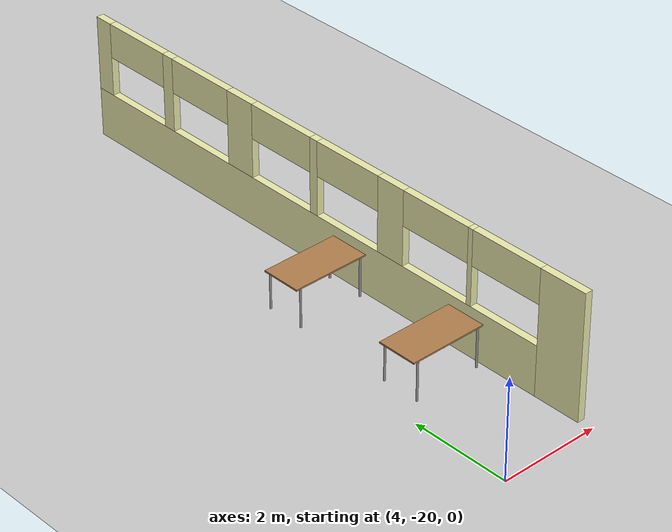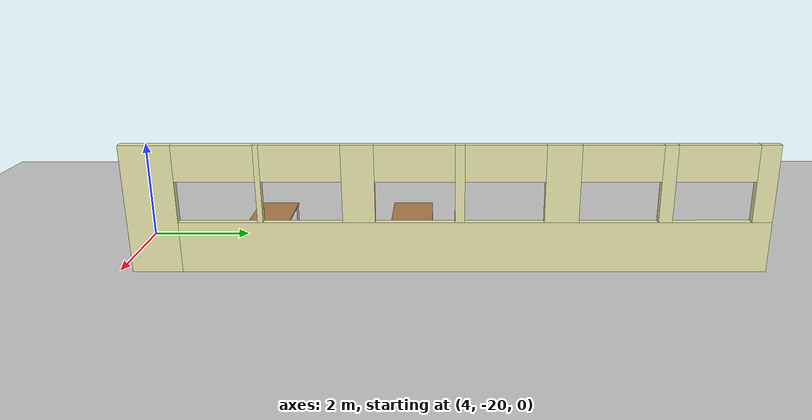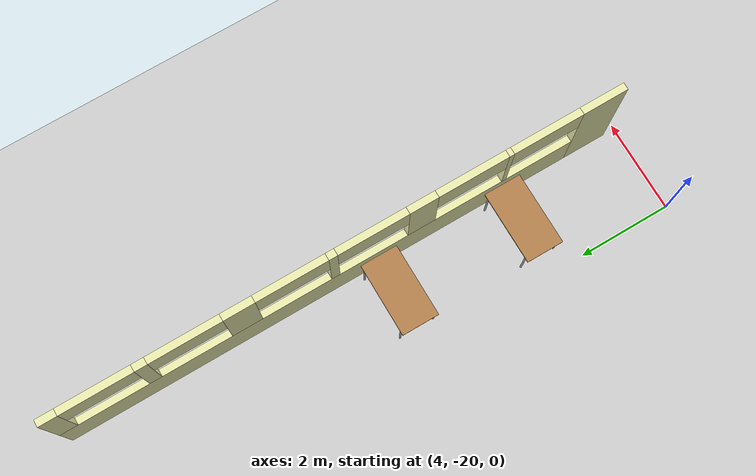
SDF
<sdf version="1.6">
 <world name="default">
  <model name="ground_plane">
   <static>1</static>
   <link name="link">
    <collision name="collision">
     <geometry><plane><normal>0 0 1</normal><size>100 100</size></plane></geometry>
     <surface><friction><ode><mu>100</mu><mu2>50</mu2></ode></friction></surface>
    </collision>
    <visual name="visual">
     <cast_shadows>0</cast_shadows>
     <geometry><plane><normal>0 0 1</normal><size>100 100</size></plane></geometry>
     <material>
      <script><uri>file://media/materials/scripts/gazebo.material</uri><name>Gazebo/Grey</name></script>
     </material>
    </visual>
   </link>
  </model>
  <model name="Building">
   <link name="Wall_2">
    <pose>6 -13.6636 0 0 -0 1.5708</pose>
    <visual name="Wall_2_Visual_0">
     <pose>-5.5945 0 1.25 0 -0 0</pose>
     <geometry><box><size>0.961004 0.15 2.5</size></box></geometry>
     <material>
      <script><uri>file://media/materials/scripts/gazebo.material</uri><name>Gazebo/Grey</name></script>
      <ambient>0.92 0.92 0.68 1</ambient>
     </material>
     <meta><layer>0</layer></meta>
    </visual>
    <collision name="Wall_2_Collision_0">
     <geometry><box><size>0.961004 0.15 2.5</size></box></geometry>
     <pose>-5.5945 0 1.25 0 -0 0</pose>
    </collision>
    <visual name="Wall_2_Visual_1">
     <pose>0.480502 0 0.5 0 -0 0</pose>
     <geometry><box><size>11.189 0.15 1</size></box></geometry>
     <material>
      <script><uri>file://media/materials/scripts/gazebo.material</uri><name>Gazebo/Grey</name></script>
      <ambient>0.92 0.92 0.68 1</ambient>
     </material>
     <meta><layer>0</layer></meta>
    </visual>
    <collision name="Wall_2_Collision_1">
     <geometry><box><size>11.189 0.15 1</size></box></geometry>
     <pose>0.480502 0 0.5 0 -0 0</pose>
    </collision>
    <visual name="Wall_2_Visual_2">
     <pose>-3.56236 0 1.75 0 -0 0</pose>
     <geometry><box><size>0.103271 0.15 1.5</size></box></geometry>
     <material>
      <script><uri>file://media/materials/scripts/gazebo.material</uri><name>Gazebo/Grey</name></script>
      <ambient>0.92 0.92 0.68 1</ambient>
     </material>
     <meta><layer>0</layer></meta>
    </visual>
    <collision name="Wall_2_Collision_2">
     <geometry><box><size>0.103271 0.15 1.5</size></box></geometry>
     <pose>-3.56236 0 1.75 0 -0 0</pose>
    </collision>
    <visual name="Wall_2_Visual_3">
     <pose>-1.70491 0 1.75 0 -0 0</pose>
     <geometry><box><size>0.611626 0.15 1.5</size></box></geometry>
     <material>
      <script><uri>file://media/materials/scripts/gazebo.material</uri><name>Gazebo/Grey</name></script>
      <ambient>0.92 0.92 0.68 1</ambient>
     </material>
     <meta><layer>0</layer></meta>
    </visual>
    <collision name="Wall_2_Collision_3">
     <geometry><box><size>0.611626 0.15 1.5</size></box></geometry>
     <pose>-1.70491 0 1.75 0 -0 0</pose>
    </collision>
    <visual name="Wall_2_Visual_4">
     <pose>0.191642 0 1.75 0 -0 0</pose>
     <geometry><box><size>0.18148 0.15 1.5</size></box></geometry>
     <material>
      <script><uri>file://media/materials/scripts/gazebo.material</uri><name>Gazebo/Grey</name></script>
      <ambient>0.92 0.92 0.68 1</ambient>
     </material>
     <meta><layer>0</layer></meta>
    </visual>
    <collision name="Wall_2_Collision_4">
     <geometry><box><size>0.18148 0.15 1.5</size></box></geometry>
     <pose>0.191642 0 1.75 0 -0 0</pose>
    </collision>
    <visual name="Wall_2_Visual_5">
     <pose>2.10775 0 1.75 0 -0 0</pose>
     <geometry><box><size>0.65073 0.15 1.5</size></box></geometry>
     <material>
      <script><uri>file://media/materials/scripts/gazebo.material</uri><name>Gazebo/Grey</name></script>
      <ambient>0.92 0.92 0.68 1</ambient>
     </material>
     <meta><layer>0</layer></meta>
    </visual>
    <collision name="Wall_2_Collision_5">
     <geometry><box><size>0.65073 0.15 1.5</size></box></geometry>
     <pose>2.10775 0 1.75 0 -0 0</pose>
    </collision>
    <visual name="Wall_2_Visual_6">
     <pose>4.06295 0 1.75 0 -0 0</pose>
     <geometry><box><size>0.259688 0.15 1.5</size></box></geometry>
     <material>
      <script><uri>file://media/materials/scripts/gazebo.material</uri><name>Gazebo/Grey</name></script>
      <ambient>0.92 0.92 0.68 1</ambient>
     </material>
     <meta><layer>0</layer></meta>
    </visual>
    <collision name="Wall_2_Collision_6">
     <geometry><box><size>0.259688 0.15 1.5</size></box></geometry>
     <pose>4.06295 0 1.75 0 -0 0</pose>
    </collision>
    <visual name="Wall_2_Visual_7">
     <pose>5.8839 0 1.75 0 -0 0</pose>
     <geometry><box><size>0.382201 0.15 1.5</size></box></geometry>
     <material>
      <script><uri>file://media/materials/scripts/gazebo.material</uri><name>Gazebo/Grey</name></script>
      <ambient>0.92 0.92 0.68 1</ambient>
     </material>
     <meta><layer>0</layer></meta>
    </visual>
    <collision name="Wall_2_Collision_7">
     <geometry><box><size>0.382201 0.15 1.5</size></box></geometry>
     <pose>5.8839 0 1.75 0 -0 0</pose>
    </collision>
    <visual name="Wall_2_Visual_8">
     <pose>-4.364 0 2.15 0 -0 0</pose>
     <geometry><box><size>1.5 0.15 0.7</size></box></geometry>
     <material>
      <script><uri>file://media/materials/scripts/gazebo.material</uri><name>Gazebo/Grey</name></script>
      <ambient>0.92 0.92 0.68 1</ambient>
     </material>
     <meta><layer>0</layer></meta>
    </visual>
    <collision name="Wall_2_Collision_8">
     <geometry><box><size>1.5 0.15 0.7</size></box></geometry>
     <pose>-4.364 0 2.15 0 -0 0</pose>
    </collision>
    <visual name="Wall_2_Visual_9">
     <pose>-2.76072 0 2.15 0 -0 0</pose>
     <geometry><box><size>1.5 0.15 0.7</size></box></geometry>
     <material>
      <script><uri>file://media/materials/scripts/gazebo.material</uri><name>Gazebo/Grey</name></script>
      <ambient>0.92 0.92 0.68 1</ambient>
     </material>
     <meta><layer>0</layer></meta>
    </visual>
    <collision name="Wall_2_Collision_9">
     <geometry><box><size>1.5 0.15 0.7</size></box></geometry>
     <pose>-2.76072 0 2.15 0 -0 0</pose>
    </collision>
    <visual name="Wall_2_Visual_10">
     <pose>-0.649098 0 2.15 0 -0 0</pose>
     <geometry><box><size>1.5 0.15 0.7</size></box></geometry>
     <material>
      <script><uri>file://media/materials/scripts/gazebo.material</uri><name>Gazebo/Grey</name></script>
      <ambient>0.92 0.92 0.68 1</ambient>
     </material>
     <meta><layer>0</layer></meta>
    </visual>
    <collision name="Wall_2_Collision_10">
     <geometry><box><size>1.5 0.15 0.7</size></box></geometry>
     <pose>-0.649098 0 2.15 0 -0 0</pose>
    </collision>
    <visual name="Wall_2_Visual_11">
     <pose>1.03238 0 2.15 0 -0 0</pose>
     <geometry><box><size>1.5 0.15 0.7</size></box></geometry>
     <material>
      <script><uri>file://media/materials/scripts/gazebo.material</uri><name>Gazebo/Grey</name></script>
      <ambient>0.92 0.92 0.68 1</ambient>
     </material>
     <meta><layer>0</layer></meta>
    </visual>
    <collision name="Wall_2_Collision_11">
     <geometry><box><size>1.5 0.15 0.7</size></box></geometry>
     <pose>1.03238 0 2.15 0 -0 0</pose>
    </collision>
    <visual name="Wall_2_Visual_12">
     <pose>3.18311 0 2.15 0 -0 0</pose>
     <geometry><box><size>1.5 0.15 0.7</size></box></geometry>
     <material>
      <script><uri>file://media/materials/scripts/gazebo.material</uri><name>Gazebo/Grey</name></script>
      <ambient>0.92 0.92 0.68 1</ambient>
     </material>
     <meta><layer>0</layer></meta>
    </visual>
    <collision name="Wall_2_Collision_12">
     <geometry><box><size>1.5 0.15 0.7</size></box></geometry>
     <pose>3.18311 0 2.15 0 -0 0</pose>
    </collision>
    <visual name="Wall_2_Visual_13">
     <pose>4.9428 0 2.15 0 -0 0</pose>
     <geometry><box><size>1.5 0.15 0.7</size></box></geometry>
     <material>
      <script><uri>file://media/materials/scripts/gazebo.material</uri><name>Gazebo/Grey</name></script>
      <ambient>0.92 0.92 0.68 1</ambient>
     </material>
     <meta><layer>0</layer></meta>
    </visual>
    <collision name="Wall_2_Collision_13">
     <geometry><box><size>1.5 0.15 0.7</size></box></geometry>
     <pose>4.9428 0 2.15 0 -0 0</pose>
    </collision>
   </link>
   <static>1</static>
  </model>
  <model name="tablealt_0_clone_51">
   <link name="link">
    <inertial>
     <mass>1</mass>
     <inertia><ixx>1</ixx><ixy>0</ixy><ixz>0</ixz><iyy>1</iyy><iyz>0</iyz><izz>1</izz></inertia>
    </inertial>
    <visual name="back_right_leg">
     <pose>-0.68 -0.38 0.4 0 -0 0</pose>
     <geometry><cylinder><radius>0.02</radius><length>0.8</length></cylinder></geometry>
     <material>
      <script><uri>file://media/materials/scripts/gazebo.material</uri><name>Gazebo/Grey</name></script>
      <shader type="pixel"><normal_map>__default__</normal_map></shader>
      <ambient>0.3 0.3 0.3 1</ambient>
      <diffuse>0.7 0.7 0.7 1</diffuse>
      <specular>0.01 0.01 0.01 1</specular>
      <emissive>0 0 0 1</emissive>
     </material>
    </visual>
    <visual name="back_left_leg">
     <pose>-0.68 0.38 0.4 0 -0 0</pose>
     <geometry><cylinder><radius>0.02</radius><length>0.8</length></cylinder></geometry>
     <material>
      <script><uri>file://media/materials/scripts/gazebo.material</uri><name>Gazebo/Grey</name></script>
      <shader type="pixel"><normal_map>__default__</normal_map></shader>
      <ambient>0.3 0.3 0.3 1</ambient>
      <diffuse>0.7 0.7 0.7 1</diffuse>
      <specular>0.01 0.01 0.01 1</specular>
      <emissive>0 0 0 1</emissive>
     </material>
    </visual>
    <visual name="visual1">
     <pose>0 0 0.8 0 -0 0</pose>
     <geometry><box><size>1.57 0.8 0.03</size></box></geometry>
     <material>
      <script><uri>file://media/materials/scripts/gazebo.material</uri><name>Gazebo/Wood</name></script>
      <shader type="pixel"><normal_map>__default__</normal_map></shader>
      <ambient>0.92 0.92 0.68 1</ambient>
      <diffuse>1 1 1 1</diffuse>
      <specular>0.2 0.2 0.2 1</specular>
      <emissive>0 0 0 1</emissive>
     </material>
    </visual>
    <visual name="front_left_leg">
     <pose>0.68 0.38 0.4 0 -0 0</pose>
     <geometry><cylinder><radius>0.02</radius><length>0.8</length></cylinder></geometry>
     <material>
      <script><uri>file://media/materials/scripts/gazebo.material</uri><name>Gazebo/Grey</name></script>
      <shader type="pixel"><normal_map>__default__</normal_map></shader>
      <ambient>0.3 0.3 0.3 1</ambient>
      <diffuse>0.7 0.7 0.7 1</diffuse>
      <specular>0.01 0.01 0.01 1</specular>
      <emissive>0 0 0 1</emissive>
     </material>
    </visual>
    <visual name="front_right_leg">
     <pose>0.68 -0.38 0.4 0 -0 0</pose>
     <geometry><cylinder><radius>0.02</radius><length>0.8</length></cylinder></geometry>
     <material>
      <script><uri>file://media/materials/scripts/gazebo.material</uri><name>Gazebo/Grey</name></script>
      <shader type="pixel"><normal_map>__default__</normal_map></shader>
      <ambient>0.3 0.3 0.3 1</ambient>
      <diffuse>0.7 0.7 0.7 1</diffuse>
      <specular>0.01 0.01 0.01 1</specular>
      <emissive>0 0 0 1</emissive>
     </material>
    </visual>
    <collision name="front_right_leg">
     <pose>0.68 -0.38 0.4 0 -0 0</pose>
     <geometry><cylinder><radius>0.02</radius><length>0.8</length></cylinder></geometry>
     <surface>
      <friction>
       <ode><mu>1</mu><mu2>1</mu2><fdir1>0 0 0</fdir1><slip1>0</slip1><slip2>0</slip2></ode>
       <torsional>
        <coefficient>1</coefficient>
        <patch_radius>0</patch_radius>
        <surface_radius>0</surface_radius>
        <use_patch_radius>1</use_patch_radius>
        <ode><slip>0</slip></ode>
       </torsional>
      </friction>
      <bounce><restitution_coefficient>0</restitution_coefficient><threshold>1e+06</threshold></bounce>
      <contact>
       <collide_without_contact>0</collide_without_contact>
       <collide_without_contact_bitmask>1</collide_without_contact_bitmask>
       <collide_bitmask>1</collide_bitmask>
       <ode>
        <soft_cfm>0</soft_cfm>
        <soft_erp>0.2</soft_erp>
        <kp>1e+13</kp>
        <kd>1</kd>
        <max_vel>0.01</max_vel>
        <min_depth>0</min_depth>
       </ode>
       <bullet>
        <split_impulse>1</split_impulse>
        <split_impulse_penetration_threshold>-0.01</split_impulse_penetration_threshold>
        <soft_cfm>0</soft_cfm>
        <soft_erp>0.2</soft_erp>
        <kp>1e+13</kp>
        <kd>1</kd>
       </bullet>
      </contact>
     </surface>
    </collision>
    <collision name="surface">
     <pose>0 0 0.8 0 -0 0</pose>
     <geometry><box><size>1.5 0.8 0.03</size></box></geometry>
     <surface>
      <friction>
       <ode><mu>0.6</mu><mu2>0.6</mu2><fdir1>0 0 0</fdir1><slip1>0</slip1><slip2>0</slip2></ode>
       <torsional>
        <coefficient>1</coefficient>
        <patch_radius>0</patch_radius>
        <surface_radius>0</surface_radius>
        <use_patch_radius>1</use_patch_radius>
        <ode><slip>0</slip></ode>
       </torsional>
      </friction>
      <bounce><restitution_coefficient>0</restitution_coefficient><threshold>1e+06</threshold></bounce>
      <contact>
       <collide_without_contact>0</collide_without_contact>
       <collide_without_contact_bitmask>1</collide_without_contact_bitmask>
       <collide_bitmask>1</collide_bitmask>
       <ode>
        <soft_cfm>0</soft_cfm>
        <soft_erp>0.2</soft_erp>
        <kp>1e+13</kp>
        <kd>1</kd>
        <max_vel>0.01</max_vel>
        <min_depth>0</min_depth>
       </ode>
       <bullet>
        <split_impulse>1</split_impulse>
        <split_impulse_penetration_threshold>-0.01</split_impulse_penetration_threshold>
        <soft_cfm>0</soft_cfm>
        <soft_erp>0.2</soft_erp>
        <kp>1e+13</kp>
        <kd>1</kd>
       </bullet>
      </contact>
     </surface>
    </collision>
    <collision name="front_left_leg">
     <pose>0.68 0.38 0.4 0 -0 0</pose>
     <geometry><cylinder><radius>0.02</radius><length>0.8</length></cylinder></geometry>
     <surface>
      <friction>
       <ode><mu>1</mu><mu2>1</mu2><fdir1>0 0 0</fdir1><slip1>0</slip1><slip2>0</slip2></ode>
       <torsional>
        <coefficient>1</coefficient>
        <patch_radius>0</patch_radius>
        <surface_radius>0</surface_radius>
        <use_patch_radius>1</use_patch_radius>
        <ode><slip>0</slip></ode>
       </torsional>
      </friction>
      <bounce><restitution_coefficient>0</restitution_coefficient><threshold>1e+06</threshold></bounce>
      <contact>
       <collide_without_contact>0</collide_without_contact>
       <collide_without_contact_bitmask>1</collide_without_contact_bitmask>
       <collide_bitmask>1</collide_bitmask>
       <ode>
        <soft_cfm>0</soft_cfm>
        <soft_erp>0.2</soft_erp>
        <kp>1e+13</kp>
        <kd>1</kd>
        <max_vel>0.01</max_vel>
        <min_depth>0</min_depth>
       </ode>
       <bullet>
        <split_impulse>1</split_impulse>
        <split_impulse_penetration_threshold>-0.01</split_impulse_penetration_threshold>
        <soft_cfm>0</soft_cfm>
        <soft_erp>0.2</soft_erp>
        <kp>1e+13</kp>
        <kd>1</kd>
       </bullet>
      </contact>
     </surface>
    </collision>
    <collision name="back_left_leg">
     <pose>-0.68 0.38 0.4 0 -0 0</pose>
     <geometry><cylinder><radius>0.02</radius><length>0.8</length></cylinder></geometry>
     <surface>
      <friction>
       <ode><mu>1</mu><mu2>1</mu2><fdir1>0 0 0</fdir1><slip1>0</slip1><slip2>0</slip2></ode>
       <torsional>
        <coefficient>1</coefficient>
        <patch_radius>0</patch_radius>
        <surface_radius>0</surface_radius>
        <use_patch_radius>1</use_patch_radius>
        <ode><slip>0</slip></ode>
       </torsional>
      </friction>
      <bounce><restitution_coefficient>0</restitution_coefficient><threshold>1e+06</threshold></bounce>
      <contact>
       <collide_without_contact>0</collide_without_contact>
       <collide_without_contact_bitmask>1</collide_without_contact_bitmask>
       <collide_bitmask>1</collide_bitmask>
       <ode>
        <soft_cfm>0</soft_cfm>
        <soft_erp>0.2</soft_erp>
        <kp>1e+13</kp>
        <kd>1</kd>
        <max_vel>0.01</max_vel>
        <min_depth>0</min_depth>
       </ode>
       <bullet>
        <split_impulse>1</split_impulse>
        <split_impulse_penetration_threshold>-0.01</split_impulse_penetration_threshold>
        <soft_cfm>0</soft_cfm>
        <soft_erp>0.2</soft_erp>
        <kp>1e+13</kp>
        <kd>1</kd>
       </bullet>
      </contact>
     </surface>
    </collision>
    <collision name="back_right_leg">
     <pose>-0.68 -0.38 0.4 0 -0 0</pose>
     <geometry><cylinder><radius>0.02</radius><length>0.8</length></cylinder></geometry>
     <surface>
      <friction>
       <ode><mu>1</mu><mu2>1</mu2><fdir1>0 0 0</fdir1><slip1>0</slip1><slip2>0</slip2></ode>
       <torsional>
        <coefficient>1</coefficient>
        <patch_radius>0</patch_radius>
        <surface_radius>0</surface_radius>
        <use_patch_radius>1</use_patch_radius>
        <ode><slip>0</slip></ode>
       </torsional>
      </friction>
      <bounce><restitution_coefficient>0</restitution_coefficient><threshold>1e+06</threshold></bounce>
      <contact>
       <collide_without_contact>0</collide_without_contact>
       <collide_without_contact_bitmask>1</collide_without_contact_bitmask>
       <collide_bitmask>1</collide_bitmask>
       <ode>
        <soft_cfm>0</soft_cfm>
        <soft_erp>0.2</soft_erp>
        <kp>1e+13</kp>
        <kd>1</kd>
        <max_vel>0.01</max_vel>
        <min_depth>0</min_depth>
       </ode>
       <bullet>
        <split_impulse>1</split_impulse>
        <split_impulse_penetration_threshold>-0.01</split_impulse_penetration_threshold>
        <soft_cfm>0</soft_cfm>
        <soft_erp>0.2</soft_erp>
        <kp>1e+13</kp>
        <kd>1</kd>
       </bullet>
      </contact>
     </surface>
    </collision>
   </link>
   <static>1</static>
   <pose>5.12 -14.4 0 0 -0 0</pose>
  </model>
  <model name="tablealt_0_clone_56">
   <link name="link">
    <inertial>
     <mass>1</mass>
     <inertia><ixx>1</ixx><ixy>0</ixy><ixz>0</ixz><iyy>1</iyy><iyz>0</iyz><izz>1</izz></inertia>
    </inertial>
    <visual name="back_right_leg">
     <pose>-0.68 -0.38 0.4 0 -0 0</pose>
     <geometry><cylinder><radius>0.02</radius><length>0.8</length></cylinder></geometry>
     <material>
      <script><uri>file://media/materials/scripts/gazebo.material</uri><name>Gazebo/Grey</name></script>
      <shader type="pixel"><normal_map>__default__</normal_map></shader>
      <ambient>0.3 0.3 0.3 1</ambient>
      <diffuse>0.7 0.7 0.7 1</diffuse>
      <specular>0.01 0.01 0.01 1</specular>
      <emissive>0 0 0 1</emissive>
     </material>
    </visual>
    <visual name="back_left_leg">
     <pose>-0.68 0.38 0.4 0 -0 0</pose>
     <geometry><cylinder><radius>0.02</radius><length>0.8</length></cylinder></geometry>
     <material>
      <script><uri>file://media/materials/scripts/gazebo.material</uri><name>Gazebo/Grey</name></script>
      <shader type="pixel"><normal_map>__default__</normal_map></shader>
      <ambient>0.3 0.3 0.3 1</ambient>
      <diffuse>0.7 0.7 0.7 1</diffuse>
      <specular>0.01 0.01 0.01 1</specular>
      <emissive>0 0 0 1</emissive>
     </material>
    </visual>
    <visual name="visual1">
     <pose>0 0 0.8 0 -0 0</pose>
     <geometry><box><size>1.57 0.8 0.03</size></box></geometry>
     <material>
      <script><uri>file://media/materials/scripts/gazebo.material</uri><name>Gazebo/Wood</name></script>
      <shader type="pixel"><normal_map>__default__</normal_map></shader>
      <ambient>0.92 0.92 0.68 1</ambient>
      <diffuse>1 1 1 1</diffuse>
      <specular>0.2 0.2 0.2 1</specular>
      <emissive>0 0 0 1</emissive>
     </material>
    </visual>
    <visual name="front_left_leg">
     <pose>0.68 0.38 0.4 0 -0 0</pose>
     <geometry><cylinder><radius>0.02</radius><length>0.8</length></cylinder></geometry>
     <material>
      <script><uri>file://media/materials/scripts/gazebo.material</uri><name>Gazebo/Grey</name></script>
      <shader type="pixel"><normal_map>__default__</normal_map></shader>
      <ambient>0.3 0.3 0.3 1</ambient>
      <diffuse>0.7 0.7 0.7 1</diffuse>
      <specular>0.01 0.01 0.01 1</specular>
      <emissive>0 0 0 1</emissive>
     </material>
    </visual>
    <visual name="front_right_leg">
     <pose>0.68 -0.38 0.4 0 -0 0</pose>
     <geometry><cylinder><radius>0.02</radius><length>0.8</length></cylinder></geometry>
     <material>
      <script><uri>file://media/materials/scripts/gazebo.material</uri><name>Gazebo/Grey</name></script>
      <shader type="pixel"><normal_map>__default__</normal_map></shader>
      <ambient>0.3 0.3 0.3 1</ambient>
      <diffuse>0.7 0.7 0.7 1</diffuse>
      <specular>0.01 0.01 0.01 1</specular>
      <emissive>0 0 0 1</emissive>
     </material>
    </visual>
    <collision name="front_right_leg">
     <pose>0.68 -0.38 0.4 0 -0 0</pose>
     <geometry><cylinder><radius>0.02</radius><length>0.8</length></cylinder></geometry>
     <surface>
      <friction>
       <ode><mu>1</mu><mu2>1</mu2><fdir1>0 0 0</fdir1><slip1>0</slip1><slip2>0</slip2></ode>
       <torsional>
        <coefficient>1</coefficient>
        <patch_radius>0</patch_radius>
        <surface_radius>0</surface_radius>
        <use_patch_radius>1</use_patch_radius>
        <ode><slip>0</slip></ode>
       </torsional>
      </friction>
      <bounce><restitution_coefficient>0</restitution_coefficient><threshold>1e+06</threshold></bounce>
      <contact>
       <collide_without_contact>0</collide_without_contact>
       <collide_without_contact_bitmask>1</collide_without_contact_bitmask>
       <collide_bitmask>1</collide_bitmask>
       <ode>
        <soft_cfm>0</soft_cfm>
        <soft_erp>0.2</soft_erp>
        <kp>1e+13</kp>
        <kd>1</kd>
        <max_vel>0.01</max_vel>
        <min_depth>0</min_depth>
       </ode>
       <bullet>
        <split_impulse>1</split_impulse>
        <split_impulse_penetration_threshold>-0.01</split_impulse_penetration_threshold>
        <soft_cfm>0</soft_cfm>
        <soft_erp>0.2</soft_erp>
        <kp>1e+13</kp>
        <kd>1</kd>
       </bullet>
      </contact>
     </surface>
    </collision>
    <collision name="surface">
     <pose>0 0 0.8 0 -0 0</pose>
     <geometry><box><size>1.5 0.8 0.03</size></box></geometry>
     <surface>
      <friction>
       <ode><mu>0.6</mu><mu2>0.6</mu2><fdir1>0 0 0</fdir1><slip1>0</slip1><slip2>0</slip2></ode>
       <torsional>
        <coefficient>1</coefficient>
        <patch_radius>0</patch_radius>
        <surface_radius>0</surface_radius>
        <use_patch_radius>1</use_patch_radius>
        <ode><slip>0</slip></ode>
       </torsional>
      </friction>
      <bounce><restitution_coefficient>0</restitution_coefficient><threshold>1e+06</threshold></bounce>
      <contact>
       <collide_without_contact>0</collide_without_contact>
       <collide_without_contact_bitmask>1</collide_without_contact_bitmask>
       <collide_bitmask>1</collide_bitmask>
       <ode>
        <soft_cfm>0</soft_cfm>
        <soft_erp>0.2</soft_erp>
        <kp>1e+13</kp>
        <kd>1</kd>
        <max_vel>0.01</max_vel>
        <min_depth>0</min_depth>
       </ode>
       <bullet>
        <split_impulse>1</split_impulse>
        <split_impulse_penetration_threshold>-0.01</split_impulse_penetration_threshold>
        <soft_cfm>0</soft_cfm>
        <soft_erp>0.2</soft_erp>
        <kp>1e+13</kp>
        <kd>1</kd>
       </bullet>
      </contact>
     </surface>
    </collision>
    <collision name="front_left_leg">
     <pose>0.68 0.38 0.4 0 -0 0</pose>
     <geometry><cylinder><radius>0.02</radius><length>0.8</length></cylinder></geometry>
     <surface>
      <friction>
       <ode><mu>1</mu><mu2>1</mu2><fdir1>0 0 0</fdir1><slip1>0</slip1><slip2>0</slip2></ode>
       <torsional>
        <coefficient>1</coefficient>
        <patch_radius>0</patch_radius>
        <surface_radius>0</surface_radius>
        <use_patch_radius>1</use_patch_radius>
        <ode><slip>0</slip></ode>
       </torsional>
      </friction>
      <bounce><restitution_coefficient>0</restitution_coefficient><threshold>1e+06</threshold></bounce>
      <contact>
       <collide_without_contact>0</collide_without_contact>
       <collide_without_contact_bitmask>1</collide_without_contact_bitmask>
       <collide_bitmask>1</collide_bitmask>
       <ode>
        <soft_cfm>0</soft_cfm>
        <soft_erp>0.2</soft_erp>
        <kp>1e+13</kp>
        <kd>1</kd>
        <max_vel>0.01</max_vel>
        <min_depth>0</min_depth>
       </ode>
       <bullet>
        <split_impulse>1</split_impulse>
        <split_impulse_penetration_threshold>-0.01</split_impulse_penetration_threshold>
        <soft_cfm>0</soft_cfm>
        <soft_erp>0.2</soft_erp>
        <kp>1e+13</kp>
        <kd>1</kd>
       </bullet>
      </contact>
     </surface>
    </collision>
    <collision name="back_left_leg">
     <pose>-0.68 0.38 0.4 0 -0 0</pose>
     <geometry><cylinder><radius>0.02</radius><length>0.8</length></cylinder></geometry>
     <surface>
      <friction>
       <ode><mu>1</mu><mu2>1</mu2><fdir1>0 0 0</fdir1><slip1>0</slip1><slip2>0</slip2></ode>
       <torsional>
        <coefficient>1</coefficient>
        <patch_radius>0</patch_radius>
        <surface_radius>0</surface_radius>
        <use_patch_radius>1</use_patch_radius>
        <ode><slip>0</slip></ode>
       </torsional>
      </friction>
      <bounce><restitution_coefficient>0</restitution_coefficient><threshold>1e+06</threshold></bounce>
      <contact>
       <collide_without_contact>0</collide_without_contact>
       <collide_without_contact_bitmask>1</collide_without_contact_bitmask>
       <collide_bitmask>1</collide_bitmask>
       <ode>
        <soft_cfm>0</soft_cfm>
        <soft_erp>0.2</soft_erp>
        <kp>1e+13</kp>
        <kd>1</kd>
        <max_vel>0.01</max_vel>
        <min_depth>0</min_depth>
       </ode>
       <bullet>
        <split_impulse>1</split_impulse>
        <split_impulse_penetration_threshold>-0.01</split_impulse_penetration_threshold>
        <soft_cfm>0</soft_cfm>
        <soft_erp>0.2</soft_erp>
        <kp>1e+13</kp>
        <kd>1</kd>
       </bullet>
      </contact>
     </surface>
    </collision>
    <collision name="back_right_leg">
     <pose>-0.68 -0.38 0.4 0 -0 0</pose>
     <geometry><cylinder><radius>0.02</radius><length>0.8</length></cylinder></geometry>
     <surface>
      <friction>
       <ode><mu>1</mu><mu2>1</mu2><fdir1>0 0 0</fdir1><slip1>0</slip1><slip2>0</slip2></ode>
       <torsional>
        <coefficient>1</coefficient>
        <patch_radius>0</patch_radius>
        <surface_radius>0</surface_radius>
        <use_patch_radius>1</use_patch_radius>
        <ode><slip>0</slip></ode>
       </torsional>
      </friction>
      <bounce><restitution_coefficient>0</restitution_coefficient><threshold>1e+06</threshold></bounce>
      <contact>
       <collide_without_contact>0</collide_without_contact>
       <collide_without_contact_bitmask>1</collide_without_contact_bitmask>
       <collide_bitmask>1</collide_bitmask>
       <ode>
        <soft_cfm>0</soft_cfm>
        <soft_erp>0.2</soft_erp>
        <kp>1e+13</kp>
        <kd>1</kd>
        <max_vel>0.01</max_vel>
        <min_depth>0</min_depth>
       </ode>
       <bullet>
        <split_impulse>1</split_impulse>
        <split_impulse_penetration_threshold>-0.01</split_impulse_penetration_threshold>
        <soft_cfm>0</soft_cfm>
        <soft_erp>0.2</soft_erp>
        <kp>1e+13</kp>
        <kd>1</kd>
       </bullet>
      </contact>
     </surface>
    </collision>
   </link>
   <static>1</static>
   <pose>5.12 -17.2 0 0 -0 0</pose>
  </model>
 </world>
</sdf>
